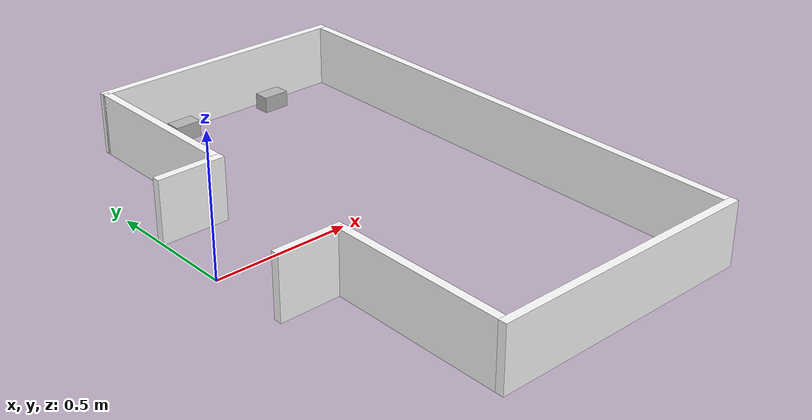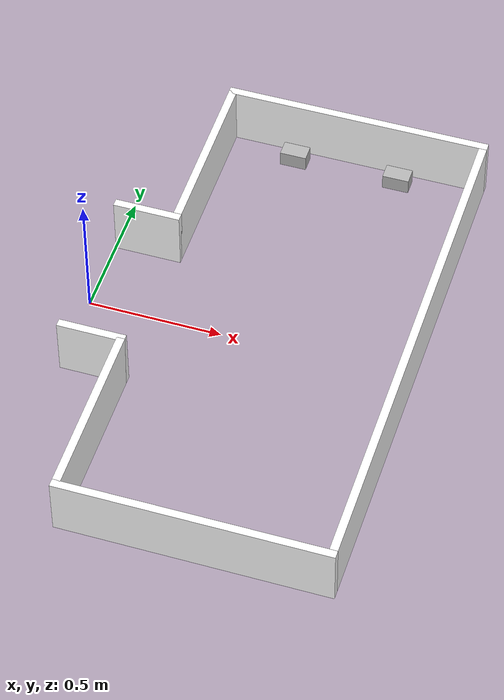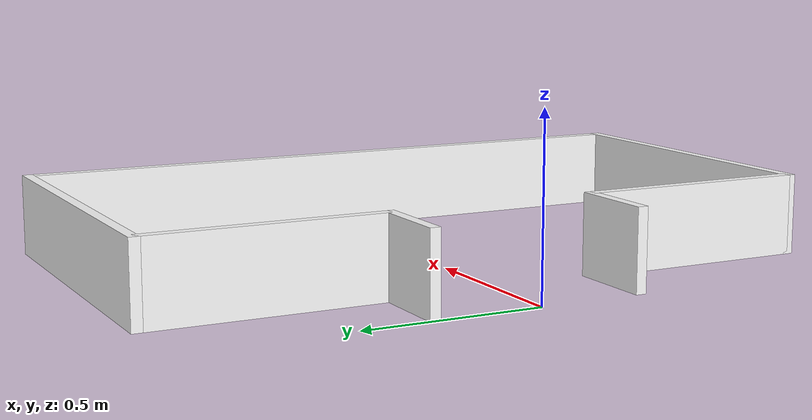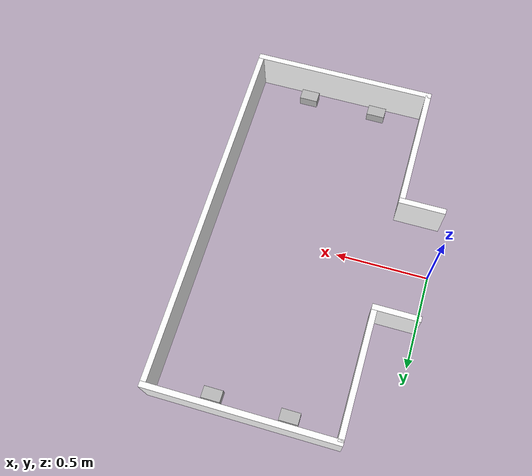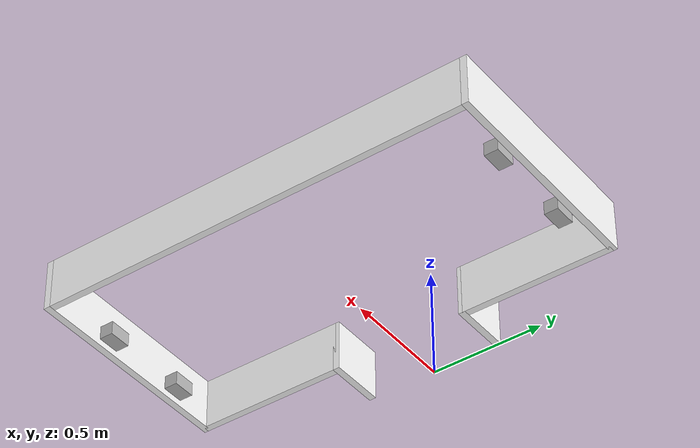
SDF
<?xml version="1.0" ?>
<sdf version="1.6">
  <model name="box1">
    <static>true</static>

    <!-- 첫 번째 박스 -->
    <link name="link1">
      <pose>0.125 0.3 0.115 0.0 0.0 0.0</pose>
      <visual name="visual1">
        <geometry>
          <box>
            <size>0.25 0.03 0.23</size>
          </box>
        </geometry>
        <material>
          <ambient>1 1 1 1</ambient>
          <diffuse>1 1 1 1</diffuse>
          <specular>0 0 0 1</specular>
          <emissive>0 0 0 1</emissive>
        </material>
      </visual>
      <collision name="collision1">
        <geometry>
          <box>
            <size>0.25 0.03 0.23</size>
          </box>
        </geometry>
      </collision>
    </link>

    <link name="link2">
      <pose>0.235 0.635 0.115 0.0 0.0 0.0</pose>
      <visual name="visual2">
        <geometry>
          <box>
            <size>0.03 0.665 0.23</size>
          </box>
        </geometry>
        <material>
          <ambient>1 1 1 1</ambient>
          <diffuse>1 1 1 1</diffuse>
          <specular>0 0 0 1</specular>
          <emissive>0 0 0 1</emissive>
        </material>
      </visual>
      <collision name="collision2">
        <geometry>
          <box>
            <size>0.03 0.665 0.23</size>
          </box>
        </geometry>
      </collision>
    </link>

    <link name="link3">
      <pose>0.72 0.970 0.115 0.0 0.0 0.0</pose>
      <visual name="visual3">
        <geometry>
          <box>
            <size>1 0.03 0.23</size>
          </box>
        </geometry>
        <material>
          <ambient>1 1 1 1</ambient>
          <diffuse>1 1 1 1</diffuse>
          <specular>0 0 0 1</specular>
          <emissive>0 0 0 1</emissive>
        </material>
      </visual>
      <collision name="collision3">
        <geometry>
          <box>
            <size>1 0.03 0.23</size>
          </box>
        </geometry>
      </collision>
    </link>

    <link name="link4">
      <pose>1.205 0.0 0.115 0.0 0.0 0.0</pose>
      <visual name="visual4">
        <geometry>
          <box>
            <size>0.03 1.91 0.23</size>
          </box>
        </geometry>
        <material>
          <ambient>1 1 1 1</ambient>
          <diffuse>1 1 1 1</diffuse>
          <specular>0 0 0 1</specular>
          <emissive>0 0 0 1</emissive>
        </material>
      </visual>
      <collision name="collision4">
        <geometry>
          <box>
            <size>0.03 1.91 0.23</size>
          </box>
        </geometry>
      </collision>
    </link>

    <link name="link5">
      <pose>0.72 -0.970 0.115 0.0 0.0 0.0</pose>
      <visual name="visual3">
        <geometry>
          <box>
            <size>1 0.03 0.23</size>
          </box>
        </geometry>
        <material>
          <ambient>1 1 1 1</ambient>
          <diffuse>1 1 1 1</diffuse>
          <specular>0 0 0 1</specular>
          <emissive>0 0 0 1</emissive>
        </material>
      </visual>
      <collision name="collision3">
        <geometry>
          <box>
            <size>1 0.03 0.23</size>
          </box>
        </geometry>
      </collision>
    </link>

    <link name="link6">
      <pose>0.235 -0.635 0.115 0.0 0.0 0.0</pose>
      <visual name="visual2">
        <geometry>
          <box>
            <size>0.03 0.665 0.23</size>
          </box>
        </geometry>
        <material>
          <ambient>1 1 1 1</ambient>
          <diffuse>1 1 1 1</diffuse>
          <specular>0 0 0 1</specular>
          <emissive>0 0 0 1</emissive>
        </material>
      </visual>
      <collision name="collision2">
        <geometry>
          <box>
            <size>0.03 0.665 0.23</size>
          </box>
        </geometry>
      </collision>
    </link>

    <link name="link7">
      <pose>0.125 -0.3 0.115 0.0 0.0 0.0</pose>
      <visual name="visual7">
        <geometry>
          <box>
            <size>0.25 0.03 0.23</size>
          </box>
        </geometry>
        <material>
          <ambient>1 1 1 1</ambient>
          <diffuse>1 1 1 1</diffuse>
          <specular>0 0 0 1</specular>
          <emissive>0 0 0 1</emissive>
        </material>
      </visual>
      <collision name="collision7">
        <geometry>
          <box>
            <size>0.25 0.03 0.23</size>
          </box>
        </geometry>
      </collision>
    </link>

    <link name="wjddnrud">
      <pose>0.9 0.9 0.03 3.14 1.57 0</pose>

      <visual name="wjddnrud_visual">
        <geometry>
          <mesh>
            <uri>model://robot_world/meshes/wjddnrud.dae</uri>
          </mesh>
        </geometry>
      </visual>

      <collision name="wjddnrud_collision">
        <geometry>
          <mesh>
            <uri>model://robot_world/meshes/wjddnrud.dae</uri>
          </mesh>
        </geometry>
      </collision>
    </link>

    <link name="ghdwlgus">
      <pose>0.5 0.9 0.03 3.14 1.57 0</pose>

      <visual name="ghdwlgus_visual">
        <geometry>
          <mesh>
            <uri>model://robot_world/meshes/ghdwlgus.dae</uri>
          </mesh>
        </geometry>
      </visual>

      <collision name="ghdwlgus_collision">
        <geometry>
          <mesh>
            <uri>model://robot_world/meshes/ghdwlgus.dae</uri>
          </mesh>
        </geometry>
      </collision>
    </link>

    <link name="dmafytn">
      <pose>0.5 -0.9 0.03 0.0 1.57 0</pose>

      <visual name="dmafytn_visual">
        <geometry>
          <mesh>
            <uri>model://robot_world/meshes/dmafytn.dae</uri>
          </mesh>
        </geometry>
      </visual>

      <collision name="dmafytn_collision">
        <geometry>
          <mesh>
            <uri>model://robot_world/meshes/dmafytn.dae</uri>
          </mesh>
        </geometry>
      </collision>
    </link>

    <link name="rhkwk">
      <pose>0.9 -0.9 0.03 0.0 1.57 0</pose>

      <visual name="rhkwk_visual">
        <geometry>
          <mesh>
            <uri>model://robot_world/meshes/rhkwk.dae</uri>
          </mesh>
        </geometry>
      </visual>

      <collision name="rhkwk_collision">
        <geometry>
          <mesh>
            <uri>model://robot_world/meshes/rhkwk.dae</uri>
          </mesh>
        </geometry>
      </collision>
    </link>

  </model>
</sdf>
